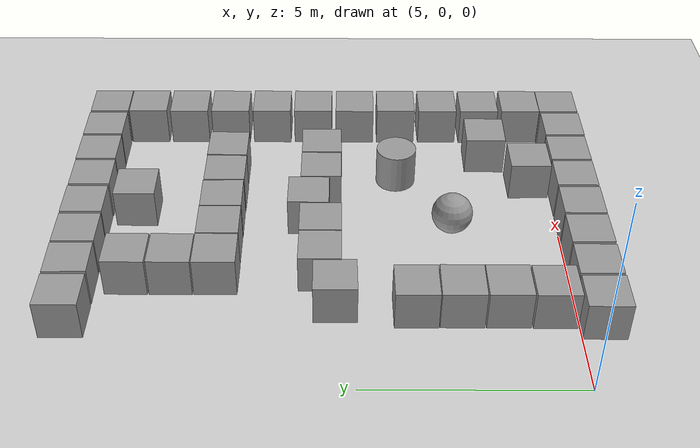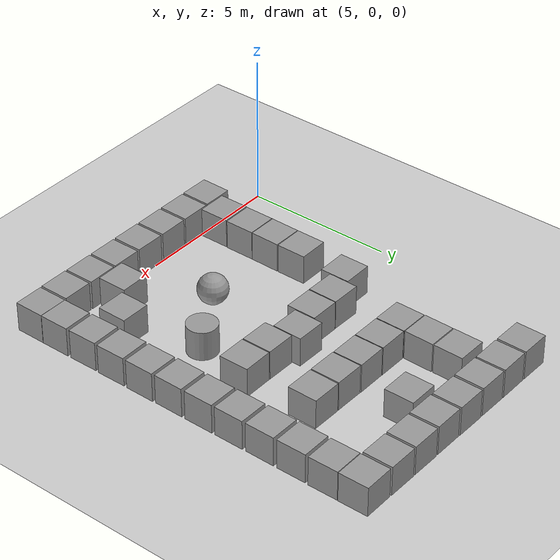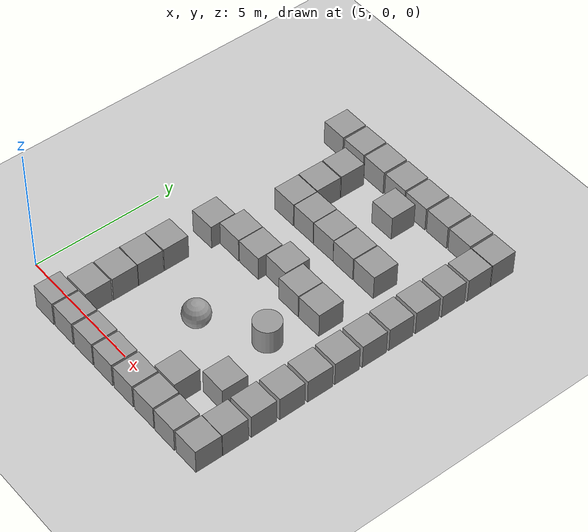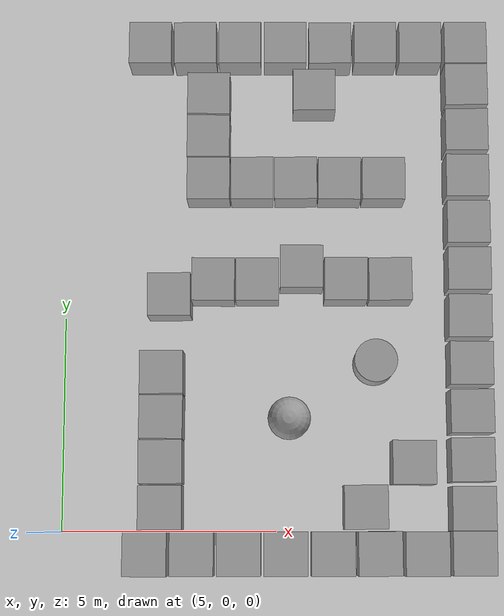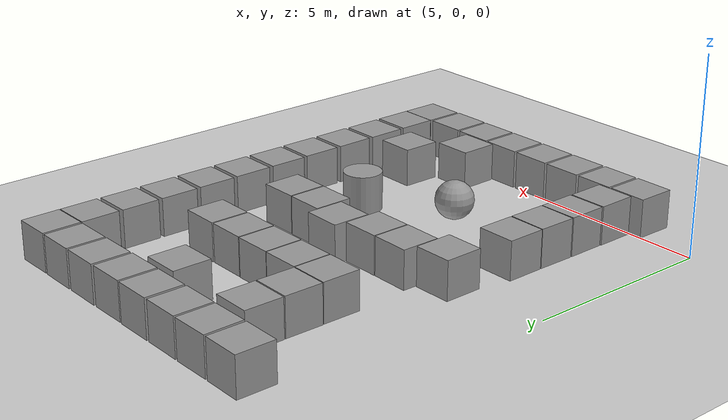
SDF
<sdf version="1.6">
 <world name="narrow_test_v4">
  <include><uri>model://ground_plane</uri></include>
  <include><uri>model://sun</uri></include>
  <model name="unit_box_7">
   <pose>7.0012 -0.5045 0.5 0 0 -0.00720</pose>
   <link name="link">
    <inertial>
     <mass>1</mass>
     <inertia>
      <ixx>0.166667</ixx>
      <ixy>0</ixy>
      <ixz>0</ixz>
      <iyy>0.166667</iyy>
      <iyz>0</iyz>
      <izz>0.166667</izz>
     </inertia>
    </inertial>
    <collision name="collision"><geometry><box><size>1 1 1</size></box></geometry></collision>
    <visual name="visual">
     <geometry><box><size>1 1 1</size></box></geometry>
     <material>
      <script><uri>file://media/materials/scripts/gazebo.material</uri><name>Gazebo/Grey</name></script>
     </material>
    </visual>
   </link>
  </model>
  <model name="unit_box_8">
   <pose>8.0671 -0.5000 0.5 0 0 -0.00417</pose>
   <link name="link">
    <inertial>
     <mass>1</mass>
     <inertia>
      <ixx>0.166667</ixx>
      <ixy>0</ixy>
      <ixz>0</ixz>
      <iyy>0.166667</iyy>
      <iyz>0</iyz>
      <izz>0.166667</izz>
     </inertia>
    </inertial>
    <collision name="collision"><geometry><box><size>1 1 1</size></box></geometry></collision>
    <visual name="visual">
     <geometry><box><size>1 1 1</size></box></geometry>
     <material>
      <script><uri>file://media/materials/scripts/gazebo.material</uri><name>Gazebo/Grey</name></script>
     </material>
    </visual>
   </link>
  </model>
  <model name="unit_box_9">
   <pose>9.1413 -0.4966 0.5 0 0 0.00423</pose>
   <link name="link">
    <inertial>
     <mass>1</mass>
     <inertia>
      <ixx>0.166667</ixx>
      <ixy>0</ixy>
      <ixz>0</ixz>
      <iyy>0.166667</iyy>
      <iyz>0</iyz>
      <izz>0.166667</izz>
     </inertia>
    </inertial>
    <collision name="collision"><geometry><box><size>1 1 1</size></box></geometry></collision>
    <visual name="visual">
     <geometry><box><size>1 1 1</size></box></geometry>
     <material>
      <script><uri>file://media/materials/scripts/gazebo.material</uri><name>Gazebo/Grey</name></script>
     </material>
    </visual>
   </link>
  </model>
  <model name="unit_box_10">
   <pose>10.2121 -0.4986 0.5 0 0 -0.00485</pose>
   <link name="link">
    <inertial>
     <mass>1</mass>
     <inertia>
      <ixx>0.166667</ixx>
      <ixy>0</ixy>
      <ixz>0</ixz>
      <iyy>0.166667</iyy>
      <iyz>0</iyz>
      <izz>0.166667</izz>
     </inertia>
    </inertial>
    <collision name="collision"><geometry><box><size>1 1 1</size></box></geometry></collision>
    <visual name="visual">
     <geometry><box><size>1 1 1</size></box></geometry>
     <material>
      <script><uri>file://media/materials/scripts/gazebo.material</uri><name>Gazebo/Grey</name></script>
     </material>
    </visual>
   </link>
  </model>
  <model name="unit_box_11">
   <pose>11.2897 -0.4986 0.5 0 0 -0.00078</pose>
   <link name="link">
    <inertial>
     <mass>1</mass>
     <inertia>
      <ixx>0.166667</ixx>
      <ixy>0</ixy>
      <ixz>0</ixz>
      <iyy>0.166667</iyy>
      <iyz>0</iyz>
      <izz>0.166667</izz>
     </inertia>
    </inertial>
    <collision name="collision"><geometry><box><size>1 1 1</size></box></geometry></collision>
    <visual name="visual">
     <geometry><box><size>1 1 1</size></box></geometry>
     <material>
      <script><uri>file://media/materials/scripts/gazebo.material</uri><name>Gazebo/Grey</name></script>
     </material>
    </visual>
   </link>
  </model>
  <model name="unit_box_12">
   <pose>12.3589 -0.4975 0.5 0 0 0.00513</pose>
   <link name="link">
    <inertial>
     <mass>1</mass>
     <inertia>
      <ixx>0.166667</ixx>
      <ixy>0</ixy>
      <ixz>0</ixz>
      <iyy>0.166667</iyy>
      <iyz>0</iyz>
      <izz>0.166667</izz>
     </inertia>
    </inertial>
    <collision name="collision"><geometry><box><size>1 1 1</size></box></geometry></collision>
    <visual name="visual">
     <geometry><box><size>1 1 1</size></box></geometry>
     <material>
      <script><uri>file://media/materials/scripts/gazebo.material</uri><name>Gazebo/Grey</name></script>
     </material>
    </visual>
   </link>
  </model>
  <model name="unit_box_13">
   <pose>13.4282 -0.5060 0.5 0 0 -0.00106</pose>
   <link name="link">
    <inertial>
     <mass>1</mass>
     <inertia>
      <ixx>0.166667</ixx>
      <ixy>0</ixy>
      <ixz>0</ixz>
      <iyy>0.166667</iyy>
      <iyz>0</iyz>
      <izz>0.166667</izz>
     </inertia>
    </inertial>
    <collision name="collision"><geometry><box><size>1 1 1</size></box></geometry></collision>
    <visual name="visual">
     <geometry><box><size>1 1 1</size></box></geometry>
     <material>
      <script><uri>file://media/materials/scripts/gazebo.material</uri><name>Gazebo/Grey</name></script>
     </material>
    </visual>
   </link>
  </model>
  <model name="unit_box_14">
   <pose>14.4988 -0.4941 0.5 0 0 -0.00342</pose>
   <link name="link">
    <inertial>
     <mass>1</mass>
     <inertia>
      <ixx>0.166667</ixx>
      <ixy>0</ixy>
      <ixz>0</ixz>
      <iyy>0.166667</iyy>
      <iyz>0</iyz>
      <izz>0.166667</izz>
     </inertia>
    </inertial>
    <collision name="collision"><geometry><box><size>1 1 1</size></box></geometry></collision>
    <visual name="visual">
     <geometry><box><size>1 1 1</size></box></geometry>
     <material>
      <script><uri>file://media/materials/scripts/gazebo.material</uri><name>Gazebo/Grey</name></script>
     </material>
    </visual>
   </link>
  </model>
  <model name="unit_box_22">
   <pose>7.0055 11.5028 0.5 0 0 -0.00508</pose>
   <link name="link">
    <inertial>
     <mass>1</mass>
     <inertia>
      <ixx>0.166667</ixx>
      <ixy>0</ixy>
      <ixz>0</ixz>
      <iyy>0.166667</iyy>
      <iyz>0</iyz>
      <izz>0.166667</izz>
     </inertia>
    </inertial>
    <collision name="collision"><geometry><box><size>1 1 1</size></box></geometry></collision>
    <visual name="visual">
     <geometry><box><size>1 1 1</size></box></geometry>
     <material>
      <script><uri>file://media/materials/scripts/gazebo.material</uri><name>Gazebo/Grey</name></script>
     </material>
    </visual>
   </link>
  </model>
  <model name="unit_box_23">
   <pose>8.0769 11.5025 0.5 0 0 0.00947</pose>
   <link name="link">
    <inertial>
     <mass>1</mass>
     <inertia>
      <ixx>0.166667</ixx>
      <ixy>0</ixy>
      <ixz>0</ixz>
      <iyy>0.166667</iyy>
      <iyz>0</iyz>
      <izz>0.166667</izz>
     </inertia>
    </inertial>
    <collision name="collision"><geometry><box><size>1 1 1</size></box></geometry></collision>
    <visual name="visual">
     <geometry><box><size>1 1 1</size></box></geometry>
     <material>
      <script><uri>file://media/materials/scripts/gazebo.material</uri><name>Gazebo/Grey</name></script>
     </material>
    </visual>
   </link>
  </model>
  <model name="unit_box_24">
   <pose>9.1379 11.5022 0.5 0 0 -0.00285</pose>
   <link name="link">
    <inertial>
     <mass>1</mass>
     <inertia>
      <ixx>0.166667</ixx>
      <ixy>0</ixy>
      <ixz>0</ixz>
      <iyy>0.166667</iyy>
      <iyz>0</iyz>
      <izz>0.166667</izz>
     </inertia>
    </inertial>
    <collision name="collision"><geometry><box><size>1 1 1</size></box></geometry></collision>
    <visual name="visual">
     <geometry><box><size>1 1 1</size></box></geometry>
     <material>
      <script><uri>file://media/materials/scripts/gazebo.material</uri><name>Gazebo/Grey</name></script>
     </material>
    </visual>
   </link>
  </model>
  <model name="unit_box_25">
   <pose>10.2161 11.5050 0.5 0 0 -0.00264</pose>
   <link name="link">
    <inertial>
     <mass>1</mass>
     <inertia>
      <ixx>0.166667</ixx>
      <ixy>0</ixy>
      <ixz>0</ixz>
      <iyy>0.166667</iyy>
      <iyz>0</iyz>
      <izz>0.166667</izz>
     </inertia>
    </inertial>
    <collision name="collision"><geometry><box><size>1 1 1</size></box></geometry></collision>
    <visual name="visual">
     <geometry><box><size>1 1 1</size></box></geometry>
     <material>
      <script><uri>file://media/materials/scripts/gazebo.material</uri><name>Gazebo/Grey</name></script>
     </material>
    </visual>
   </link>
  </model>
  <model name="unit_box_26">
   <pose>11.2824 11.4949 0.5 0 0 0.00120</pose>
   <link name="link">
    <inertial>
     <mass>1</mass>
     <inertia>
      <ixx>0.166667</ixx>
      <ixy>0</ixy>
      <ixz>0</ixz>
      <iyy>0.166667</iyy>
      <iyz>0</iyz>
      <izz>0.166667</izz>
     </inertia>
    </inertial>
    <collision name="collision"><geometry><box><size>1 1 1</size></box></geometry></collision>
    <visual name="visual">
     <geometry><box><size>1 1 1</size></box></geometry>
     <material>
      <script><uri>file://media/materials/scripts/gazebo.material</uri><name>Gazebo/Grey</name></script>
     </material>
    </visual>
   </link>
  </model>
  <model name="unit_box_27">
   <pose>12.3555 11.5027 0.5 0 0 -0.00360</pose>
   <link name="link">
    <inertial>
     <mass>1</mass>
     <inertia>
      <ixx>0.166667</ixx>
      <ixy>0</ixy>
      <ixz>0</ixz>
      <iyy>0.166667</iyy>
      <iyz>0</iyz>
      <izz>0.166667</izz>
     </inertia>
    </inertial>
    <collision name="collision"><geometry><box><size>1 1 1</size></box></geometry></collision>
    <visual name="visual">
     <geometry><box><size>1 1 1</size></box></geometry>
     <material>
      <script><uri>file://media/materials/scripts/gazebo.material</uri><name>Gazebo/Grey</name></script>
     </material>
    </visual>
   </link>
  </model>
  <model name="unit_box_28">
   <pose>13.4269 11.5038 0.5 0 0 -0.00310</pose>
   <link name="link">
    <inertial>
     <mass>1</mass>
     <inertia>
      <ixx>0.166667</ixx>
      <ixy>0</ixy>
      <ixz>0</ixz>
      <iyy>0.166667</iyy>
      <iyz>0</iyz>
      <izz>0.166667</izz>
     </inertia>
    </inertial>
    <collision name="collision"><geometry><box><size>1 1 1</size></box></geometry></collision>
    <visual name="visual">
     <geometry><box><size>1 1 1</size></box></geometry>
     <material>
      <script><uri>file://media/materials/scripts/gazebo.material</uri><name>Gazebo/Grey</name></script>
     </material>
    </visual>
   </link>
  </model>
  <model name="unit_box_29">
   <pose>14.5041 11.4994 0.5 0 0 0.00678</pose>
   <link name="link">
    <inertial>
     <mass>1</mass>
     <inertia>
      <ixx>0.166667</ixx>
      <ixy>0</ixy>
      <ixz>0</ixz>
      <iyy>0.166667</iyy>
      <iyz>0</iyz>
      <izz>0.166667</izz>
     </inertia>
    </inertial>
    <collision name="collision"><geometry><box><size>1 1 1</size></box></geometry></collision>
    <visual name="visual">
     <geometry><box><size>1 1 1</size></box></geometry>
     <material>
      <script><uri>file://media/materials/scripts/gazebo.material</uri><name>Gazebo/Grey</name></script>
     </material>
    </visual>
   </link>
  </model>
  <model name="unit_box_40">
   <pose>14.5022 0.5159 0.5 0 0 0.00002</pose>
   <link name="link">
    <inertial>
     <mass>1</mass>
     <inertia>
      <ixx>0.166667</ixx>
      <ixy>0</ixy>
      <ixz>0</ixz>
      <iyy>0.166667</iyy>
      <iyz>0</iyz>
      <izz>0.166667</izz>
     </inertia>
    </inertial>
    <collision name="collision"><geometry><box><size>1 1 1</size></box></geometry></collision>
    <visual name="visual">
     <geometry><box><size>1 1 1</size></box></geometry>
     <material>
      <script><uri>file://media/materials/scripts/gazebo.material</uri><name>Gazebo/Grey</name></script>
     </material>
    </visual>
   </link>
  </model>
  <model name="unit_box_41">
   <pose>14.4943 1.6236 0.5 0 0 0.00868</pose>
   <link name="link">
    <inertial>
     <mass>1</mass>
     <inertia>
      <ixx>0.166667</ixx>
      <ixy>0</ixy>
      <ixz>0</ixz>
      <iyy>0.166667</iyy>
      <iyz>0</iyz>
      <izz>0.166667</izz>
     </inertia>
    </inertial>
    <collision name="collision"><geometry><box><size>1 1 1</size></box></geometry></collision>
    <visual name="visual">
     <geometry><box><size>1 1 1</size></box></geometry>
     <material>
      <script><uri>file://media/materials/scripts/gazebo.material</uri><name>Gazebo/Grey</name></script>
     </material>
    </visual>
   </link>
  </model>
  <model name="unit_box_42">
   <pose>14.5013 2.7323 0.5 0 0 0.00866</pose>
   <link name="link">
    <inertial>
     <mass>1</mass>
     <inertia>
      <ixx>0.166667</ixx>
      <ixy>0</ixy>
      <ixz>0</ixz>
      <iyy>0.166667</iyy>
      <iyz>0</iyz>
      <izz>0.166667</izz>
     </inertia>
    </inertial>
    <collision name="collision"><geometry><box><size>1 1 1</size></box></geometry></collision>
    <visual name="visual">
     <geometry><box><size>1 1 1</size></box></geometry>
     <material>
      <script><uri>file://media/materials/scripts/gazebo.material</uri><name>Gazebo/Grey</name></script>
     </material>
    </visual>
   </link>
  </model>
  <model name="unit_box_43">
   <pose>14.5059 3.8421 0.5 0 0 -0.00430</pose>
   <link name="link">
    <inertial>
     <mass>1</mass>
     <inertia>
      <ixx>0.166667</ixx>
      <ixy>0</ixy>
      <ixz>0</ixz>
      <iyy>0.166667</iyy>
      <iyz>0</iyz>
      <izz>0.166667</izz>
     </inertia>
    </inertial>
    <collision name="collision"><geometry><box><size>1 1 1</size></box></geometry></collision>
    <visual name="visual">
     <geometry><box><size>1 1 1</size></box></geometry>
     <material>
      <script><uri>file://media/materials/scripts/gazebo.material</uri><name>Gazebo/Grey</name></script>
     </material>
    </visual>
   </link>
  </model>
  <model name="unit_box_44">
   <pose>14.4963 4.9425 0.5 0 0 -0.00948</pose>
   <link name="link">
    <inertial>
     <mass>1</mass>
     <inertia>
      <ixx>0.166667</ixx>
      <ixy>0</ixy>
      <ixz>0</ixz>
      <iyy>0.166667</iyy>
      <iyz>0</iyz>
      <izz>0.166667</izz>
     </inertia>
    </inertial>
    <collision name="collision"><geometry><box><size>1 1 1</size></box></geometry></collision>
    <visual name="visual">
     <geometry><box><size>1 1 1</size></box></geometry>
     <material>
      <script><uri>file://media/materials/scripts/gazebo.material</uri><name>Gazebo/Grey</name></script>
     </material>
    </visual>
   </link>
  </model>
  <model name="unit_box_45">
   <pose>14.5013 6.0570 0.5 0 0 -0.00266</pose>
   <link name="link">
    <inertial>
     <mass>1</mass>
     <inertia>
      <ixx>0.166667</ixx>
      <ixy>0</ixy>
      <ixz>0</ixz>
      <iyy>0.166667</iyy>
      <iyz>0</iyz>
      <izz>0.166667</izz>
     </inertia>
    </inertial>
    <collision name="collision"><geometry><box><size>1 1 1</size></box></geometry></collision>
    <visual name="visual">
     <geometry><box><size>1 1 1</size></box></geometry>
     <material>
      <script><uri>file://media/materials/scripts/gazebo.material</uri><name>Gazebo/Grey</name></script>
     </material>
    </visual>
   </link>
  </model>
  <model name="unit_box_46">
   <pose>14.4994 7.1619 0.5 0 0 -0.00415</pose>
   <link name="link">
    <inertial>
     <mass>1</mass>
     <inertia>
      <ixx>0.166667</ixx>
      <ixy>0</ixy>
      <ixz>0</ixz>
      <iyy>0.166667</iyy>
      <iyz>0</iyz>
      <izz>0.166667</izz>
     </inertia>
    </inertial>
    <collision name="collision"><geometry><box><size>1 1 1</size></box></geometry></collision>
    <visual name="visual">
     <geometry><box><size>1 1 1</size></box></geometry>
     <material>
      <script><uri>file://media/materials/scripts/gazebo.material</uri><name>Gazebo/Grey</name></script>
     </material>
    </visual>
   </link>
  </model>
  <model name="unit_box_47">
   <pose>14.4953 8.2712 0.5 0 0 -0.00535</pose>
   <link name="link">
    <inertial>
     <mass>1</mass>
     <inertia>
      <ixx>0.166667</ixx>
      <ixy>0</ixy>
      <ixz>0</ixz>
      <iyy>0.166667</iyy>
      <iyz>0</iyz>
      <izz>0.166667</izz>
     </inertia>
    </inertial>
    <collision name="collision"><geometry><box><size>1 1 1</size></box></geometry></collision>
    <visual name="visual">
     <geometry><box><size>1 1 1</size></box></geometry>
     <material>
      <script><uri>file://media/materials/scripts/gazebo.material</uri><name>Gazebo/Grey</name></script>
     </material>
    </visual>
   </link>
  </model>
  <model name="unit_box_48">
   <pose>14.4965 9.3764 0.5 0 0 0.00246</pose>
   <link name="link">
    <inertial>
     <mass>1</mass>
     <inertia>
      <ixx>0.166667</ixx>
      <ixy>0</ixy>
      <ixz>0</ixz>
      <iyy>0.166667</iyy>
      <iyz>0</iyz>
      <izz>0.166667</izz>
     </inertia>
    </inertial>
    <collision name="collision"><geometry><box><size>1 1 1</size></box></geometry></collision>
    <visual name="visual">
     <geometry><box><size>1 1 1</size></box></geometry>
     <material>
      <script><uri>file://media/materials/scripts/gazebo.material</uri><name>Gazebo/Grey</name></script>
     </material>
    </visual>
   </link>
  </model>
  <model name="unit_box_49">
   <pose>14.5043 10.4753 0.5 0 0 0.00844</pose>
   <link name="link">
    <inertial>
     <mass>1</mass>
     <inertia>
      <ixx>0.166667</ixx>
      <ixy>0</ixy>
      <ixz>0</ixz>
      <iyy>0.166667</iyy>
      <iyz>0</iyz>
      <izz>0.166667</izz>
     </inertia>
    </inertial>
    <collision name="collision"><geometry><box><size>1 1 1</size></box></geometry></collision>
    <visual name="visual">
     <geometry><box><size>1 1 1</size></box></geometry>
     <material>
      <script><uri>file://media/materials/scripts/gazebo.material</uri><name>Gazebo/Grey</name></script>
     </material>
    </visual>
   </link>
  </model>
  <model name="unit_box_62">
   <pose>7.3363 0.5462 0.5 0 0 0.00783</pose>
   <link name="link">
    <inertial>
     <mass>1</mass>
     <inertia>
      <ixx>0.166667</ixx>
      <ixy>0</ixy>
      <ixz>0</ixz>
      <iyy>0.166667</iyy>
      <iyz>0</iyz>
      <izz>0.166667</izz>
     </inertia>
    </inertial>
    <collision name="collision"><geometry><box><size>1 1 1</size></box></geometry></collision>
    <visual name="visual">
     <geometry><box><size>1 1 1</size></box></geometry>
     <material>
      <script><uri>file://media/materials/scripts/gazebo.material</uri><name>Gazebo/Grey</name></script>
     </material>
    </visual>
   </link>
  </model>
  <model name="unit_box_63">
   <pose>7.3414 1.5837 0.5 0 0 0.00840</pose>
   <link name="link">
    <inertial>
     <mass>1</mass>
     <inertia>
      <ixx>0.166667</ixx>
      <ixy>0</ixy>
      <ixz>0</ixz>
      <iyy>0.166667</iyy>
      <iyz>0</iyz>
      <izz>0.166667</izz>
     </inertia>
    </inertial>
    <collision name="collision"><geometry><box><size>1 1 1</size></box></geometry></collision>
    <visual name="visual">
     <geometry><box><size>1 1 1</size></box></geometry>
     <material>
      <script><uri>file://media/materials/scripts/gazebo.material</uri><name>Gazebo/Grey</name></script>
     </material>
    </visual>
   </link>
  </model>
  <model name="unit_box_64">
   <pose>7.3422 2.6085 0.5 0 0 -0.00895</pose>
   <link name="link">
    <inertial>
     <mass>1</mass>
     <inertia>
      <ixx>0.166667</ixx>
      <ixy>0</ixy>
      <ixz>0</ixz>
      <iyy>0.166667</iyy>
      <iyz>0</iyz>
      <izz>0.166667</izz>
     </inertia>
    </inertial>
    <collision name="collision"><geometry><box><size>1 1 1</size></box></geometry></collision>
    <visual name="visual">
     <geometry><box><size>1 1 1</size></box></geometry>
     <material>
      <script><uri>file://media/materials/scripts/gazebo.material</uri><name>Gazebo/Grey</name></script>
     </material>
    </visual>
   </link>
  </model>
  <model name="unit_box_65">
   <pose>7.3420 3.6370 0.5 0 0 0.00460</pose>
   <link name="link">
    <inertial>
     <mass>1</mass>
     <inertia>
      <ixx>0.166667</ixx>
      <ixy>0</ixy>
      <ixz>0</ixz>
      <iyy>0.166667</iyy>
      <iyz>0</iyz>
      <izz>0.166667</izz>
     </inertia>
    </inertial>
    <collision name="collision"><geometry><box><size>1 1 1</size></box></geometry></collision>
    <visual name="visual">
     <geometry><box><size>1 1 1</size></box></geometry>
     <material>
      <script><uri>file://media/materials/scripts/gazebo.material</uri><name>Gazebo/Grey</name></script>
     </material>
    </visual>
   </link>
  </model>
  <model name="unit_box_67">
   <pose>7.5039 5.4493 0.5 0 0 0.00980</pose>
   <link name="link">
    <inertial>
     <mass>1</mass>
     <inertia>
      <ixx>0.166667</ixx>
      <ixy>0</ixy>
      <ixz>0</ixz>
      <iyy>0.166667</iyy>
      <iyz>0</iyz>
      <izz>0.166667</izz>
     </inertia>
    </inertial>
    <collision name="collision"><geometry><box><size>1 1 1</size></box></geometry></collision>
    <visual name="visual">
     <geometry><box><size>1 1 1</size></box></geometry>
     <material>
      <script><uri>file://media/materials/scripts/gazebo.material</uri><name>Gazebo/Grey</name></script>
     </material>
    </visual>
   </link>
  </model>
  <model name="unit_box_77">
   <pose>8.5286 5.8014 0.5 0 0 -0.01006</pose>
   <link name="link">
    <inertial>
     <mass>1</mass>
     <inertia>
      <ixx>0.166667</ixx>
      <ixy>0</ixy>
      <ixz>0</ixz>
      <iyy>0.166667</iyy>
      <iyz>0</iyz>
      <izz>0.166667</izz>
     </inertia>
    </inertial>
    <collision name="collision"><geometry><box><size>1 1 1</size></box></geometry></collision>
    <visual name="visual">
     <geometry><box><size>1 1 1</size></box></geometry>
     <material>
      <script><uri>file://media/materials/scripts/gazebo.material</uri><name>Gazebo/Grey</name></script>
     </material>
    </visual>
   </link>
  </model>
  <model name="unit_box_78">
   <pose>9.5570 5.8006 0.5 0 0 -0.00008</pose>
   <link name="link">
    <inertial>
     <mass>1</mass>
     <inertia>
      <ixx>0.166667</ixx>
      <ixy>0</ixy>
      <ixz>0</ixz>
      <iyy>0.166667</iyy>
      <iyz>0</iyz>
      <izz>0.166667</izz>
     </inertia>
    </inertial>
    <collision name="collision"><geometry><box><size>1 1 1</size></box></geometry></collision>
    <visual name="visual">
     <geometry><box><size>1 1 1</size></box></geometry>
     <material>
      <script><uri>file://media/materials/scripts/gazebo.material</uri><name>Gazebo/Grey</name></script>
     </material>
    </visual>
   </link>
  </model>
  <model name="unit_box_79">
   <pose>10.5902 6.1031 0.5 0 0 -0.00908</pose>
   <link name="link">
    <inertial>
     <mass>1</mass>
     <inertia>
      <ixx>0.166667</ixx>
      <ixy>0</ixy>
      <ixz>0</ixz>
      <iyy>0.166667</iyy>
      <iyz>0</iyz>
      <izz>0.166667</izz>
     </inertia>
    </inertial>
    <collision name="collision"><geometry><box><size>1 1 1</size></box></geometry></collision>
    <visual name="visual">
     <geometry><box><size>1 1 1</size></box></geometry>
     <material>
      <script><uri>file://media/materials/scripts/gazebo.material</uri><name>Gazebo/Grey</name></script>
     </material>
    </visual>
   </link>
  </model>
  <model name="unit_box_80">
   <pose>11.6194 5.8056 0.5 0 0 -0.00595</pose>
   <link name="link">
    <inertial>
     <mass>1</mass>
     <inertia>
      <ixx>0.166667</ixx>
      <ixy>0</ixy>
      <ixz>0</ixz>
      <iyy>0.166667</iyy>
      <iyz>0</iyz>
      <izz>0.166667</izz>
     </inertia>
    </inertial>
    <collision name="collision"><geometry><box><size>1 1 1</size></box></geometry></collision>
    <visual name="visual">
     <geometry><box><size>1 1 1</size></box></geometry>
     <material>
      <script><uri>file://media/materials/scripts/gazebo.material</uri><name>Gazebo/Grey</name></script>
     </material>
    </visual>
   </link>
  </model>
  <model name="unit_box_81">
   <pose>12.6537 5.8016 0.5 0 0 0.00771</pose>
   <link name="link">
    <inertial>
     <mass>1</mass>
     <inertia>
      <ixx>0.166667</ixx>
      <ixy>0</ixy>
      <ixz>0</ixz>
      <iyy>0.166667</iyy>
      <iyz>0</iyz>
      <izz>0.166667</izz>
     </inertia>
    </inertial>
    <collision name="collision"><geometry><box><size>1 1 1</size></box></geometry></collision>
    <visual name="visual">
     <geometry><box><size>1 1 1</size></box></geometry>
     <material>
      <script><uri>file://media/materials/scripts/gazebo.material</uri><name>Gazebo/Grey</name></script>
     </material>
    </visual>
   </link>
  </model>
  <model name="unit_box_82">
   <pose>12.0454 0.5498 0.5 0 0 0.00548</pose>
   <link name="link">
    <inertial>
     <mass>1</mass>
     <inertia>
      <ixx>0.166667</ixx>
      <ixy>0</ixy>
      <ixz>0</ixz>
      <iyy>0.166667</iyy>
      <iyz>0</iyz>
      <izz>0.166667</izz>
     </inertia>
    </inertial>
    <collision name="collision"><geometry><box><size>1 1 1</size></box></geometry></collision>
    <visual name="visual">
     <geometry><box><size>1 1 1</size></box></geometry>
     <material>
      <script><uri>file://media/materials/scripts/gazebo.material</uri><name>Gazebo/Grey</name></script>
     </material>
    </visual>
   </link>
  </model>
  <model name="unit_box_83">
   <pose>13.1545 1.5649 0.5 0 0 -0.00857</pose>
   <link name="link">
    <inertial>
     <mass>1</mass>
     <inertia>
      <ixx>0.166667</ixx>
      <ixy>0</ixy>
      <ixz>0</ixz>
      <iyy>0.166667</iyy>
      <iyz>0</iyz>
      <izz>0.166667</izz>
     </inertia>
    </inertial>
    <collision name="collision"><geometry><box><size>1 1 1</size></box></geometry></collision>
    <visual name="visual">
     <geometry><box><size>1 1 1</size></box></geometry>
     <material>
      <script><uri>file://media/materials/scripts/gazebo.material</uri><name>Gazebo/Grey</name></script>
     </material>
    </visual>
   </link>
  </model>
  <model name="unit_box_84">
   <pose>8.4047 8.2010 0.5 0 0 -0.00350</pose>
   <link name="link">
    <inertial>
     <mass>1</mass>
     <inertia>
      <ixx>0.166667</ixx>
      <ixy>0</ixy>
      <ixz>0</ixz>
      <iyy>0.166667</iyy>
      <iyz>0</iyz>
      <izz>0.166667</izz>
     </inertia>
    </inertial>
    <collision name="collision"><geometry><box><size>1 1 1</size></box></geometry></collision>
    <visual name="visual">
     <geometry><box><size>1 1 1</size></box></geometry>
     <material>
      <script><uri>file://media/materials/scripts/gazebo.material</uri><name>Gazebo/Grey</name></script>
     </material>
    </visual>
   </link>
  </model>
  <model name="unit_box_85">
   <pose>9.4290 8.2048 0.5 0 0 0.00285</pose>
   <link name="link">
    <inertial>
     <mass>1</mass>
     <inertia>
      <ixx>0.166667</ixx>
      <ixy>0</ixy>
      <ixz>0</ixz>
      <iyy>0.166667</iyy>
      <iyz>0</iyz>
      <izz>0.166667</izz>
     </inertia>
    </inertial>
    <collision name="collision"><geometry><box><size>1 1 1</size></box></geometry></collision>
    <visual name="visual">
     <geometry><box><size>1 1 1</size></box></geometry>
     <material>
      <script><uri>file://media/materials/scripts/gazebo.material</uri><name>Gazebo/Grey</name></script>
     </material>
    </visual>
   </link>
  </model>
  <model name="unit_box_86">
   <pose>10.4546 8.2043 0.5 0 0 0.00818</pose>
   <link name="link">
    <inertial>
     <mass>1</mass>
     <inertia>
      <ixx>0.166667</ixx>
      <ixy>0</ixy>
      <ixz>0</ixz>
      <iyy>0.166667</iyy>
      <iyz>0</iyz>
      <izz>0.166667</izz>
     </inertia>
    </inertial>
    <collision name="collision"><geometry><box><size>1 1 1</size></box></geometry></collision>
    <visual name="visual">
     <geometry><box><size>1 1 1</size></box></geometry>
     <material>
      <script><uri>file://media/materials/scripts/gazebo.material</uri><name>Gazebo/Grey</name></script>
     </material>
    </visual>
   </link>
  </model>
  <model name="unit_box_87">
   <pose>11.4844 8.1956 0.5 0 0 -0.00574</pose>
   <link name="link">
    <inertial>
     <mass>1</mass>
     <inertia>
      <ixx>0.166667</ixx>
      <ixy>0</ixy>
      <ixz>0</ixz>
      <iyy>0.166667</iyy>
      <iyz>0</iyz>
      <izz>0.166667</izz>
     </inertia>
    </inertial>
    <collision name="collision"><geometry><box><size>1 1 1</size></box></geometry></collision>
    <visual name="visual">
     <geometry><box><size>1 1 1</size></box></geometry>
     <material>
      <script><uri>file://media/materials/scripts/gazebo.material</uri><name>Gazebo/Grey</name></script>
     </material>
    </visual>
   </link>
  </model>
  <model name="unit_box_88">
   <pose>12.5228 8.1961 0.5 0 0 -0.00783</pose>
   <link name="link">
    <inertial>
     <mass>1</mass>
     <inertia>
      <ixx>0.166667</ixx>
      <ixy>0</ixy>
      <ixz>0</ixz>
      <iyy>0.166667</iyy>
      <iyz>0</iyz>
      <izz>0.166667</izz>
     </inertia>
    </inertial>
    <collision name="collision"><geometry><box><size>1 1 1</size></box></geometry></collision>
    <visual name="visual">
     <geometry><box><size>1 1 1</size></box></geometry>
     <material>
      <script><uri>file://media/materials/scripts/gazebo.material</uri><name>Gazebo/Grey</name></script>
     </material>
    </visual>
   </link>
  </model>
  <model name="unit_box_89">
   <pose>8.3999 9.2258 0.5 0 0 -0.00936</pose>
   <link name="link">
    <inertial>
     <mass>1</mass>
     <inertia>
      <ixx>0.166667</ixx>
      <ixy>0</ixy>
      <ixz>0</ixz>
      <iyy>0.166667</iyy>
      <iyz>0</iyz>
      <izz>0.166667</izz>
     </inertia>
    </inertial>
    <collision name="collision"><geometry><box><size>1 1 1</size></box></geometry></collision>
    <visual name="visual">
     <geometry><box><size>1 1 1</size></box></geometry>
     <material>
      <script><uri>file://media/materials/scripts/gazebo.material</uri><name>Gazebo/Grey</name></script>
     </material>
    </visual>
   </link>
  </model>
  <model name="unit_box_90">
   <pose>8.4024 10.2607 0.5 0 0 -0.00781</pose>
   <link name="link">
    <inertial>
     <mass>1</mass>
     <inertia>
      <ixx>0.166667</ixx>
      <ixy>0</ixy>
      <ixz>0</ixz>
      <iyy>0.166667</iyy>
      <iyz>0</iyz>
      <izz>0.166667</izz>
     </inertia>
    </inertial>
    <collision name="collision"><geometry><box><size>1 1 1</size></box></geometry></collision>
    <visual name="visual">
     <geometry><box><size>1 1 1</size></box></geometry>
     <material>
      <script><uri>file://media/materials/scripts/gazebo.material</uri><name>Gazebo/Grey</name></script>
     </material>
    </visual>
   </link>
  </model>
  <model name="unit_box_91">
   <pose>10.9005 10.3450 0.5 0 0 0.00178</pose>
   <link name="link">
    <inertial>
     <mass>1</mass>
     <inertia>
      <ixx>0.166667</ixx>
      <ixy>0</ixy>
      <ixz>0</ixz>
      <iyy>0.166667</iyy>
      <iyz>0</iyz>
      <izz>0.166667</izz>
     </inertia>
    </inertial>
    <collision name="collision"><geometry><box><size>1 1 1</size></box></geometry></collision>
    <visual name="visual">
     <geometry><box><size>1 1 1</size></box></geometry>
     <material>
      <script><uri>file://media/materials/scripts/gazebo.material</uri><name>Gazebo/Grey</name></script>
     </material>
    </visual>
   </link>
  </model>
  <model name="unit_sphere_1">
   <pose>10.3000 2.6000 0.5 0 0 0.00000</pose>
   <link name="link">
    <inertial>
     <mass>1</mass>
     <inertia>
      <ixx>0.166667</ixx>
      <ixy>0</ixy>
      <ixz>0</ixz>
      <iyy>0.166667</iyy>
      <iyz>0</iyz>
      <izz>0.166667</izz>
     </inertia>
    </inertial>
    <collision name="collision"><geometry><sphere><radius>0.5</radius></sphere></geometry></collision>
    <visual name="visual">
     <geometry><sphere><radius>0.5</radius></sphere></geometry>
     <material>
      <script><uri>file://media/materials/scripts/gazebo.material</uri><name>Gazebo/Grey</name></script>
     </material>
    </visual>
   </link>
  </model>
  <model name="unit_cylinder_1">
   <pose>12.3000 3.9000 0.5 0 0 0.00000</pose>
   <link name="link">
    <inertial>
     <mass>1</mass>
     <inertia>
      <ixx>0.166667</ixx>
      <ixy>0</ixy>
      <ixz>0</ixz>
      <iyy>0.166667</iyy>
      <iyz>0</iyz>
      <izz>0.166667</izz>
     </inertia>
    </inertial>
    <collision name="collision">
     <geometry><cylinder><radius>0.5</radius><length>1</length></cylinder></geometry>
    </collision>
    <visual name="visual">
     <geometry><cylinder><radius>0.5</radius><length>1</length></cylinder></geometry>
     <material>
      <script><uri>file://media/materials/scripts/gazebo.material</uri><name>Gazebo/Grey</name></script>
     </material>
    </visual>
   </link>
  </model>
 </world>
</sdf>
